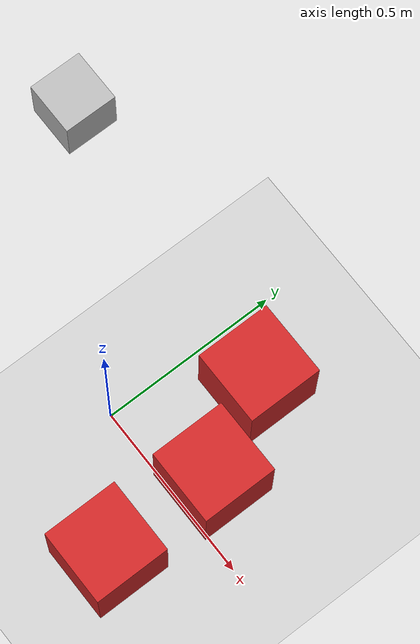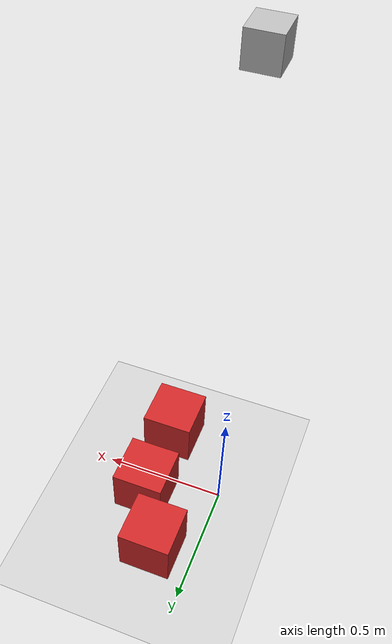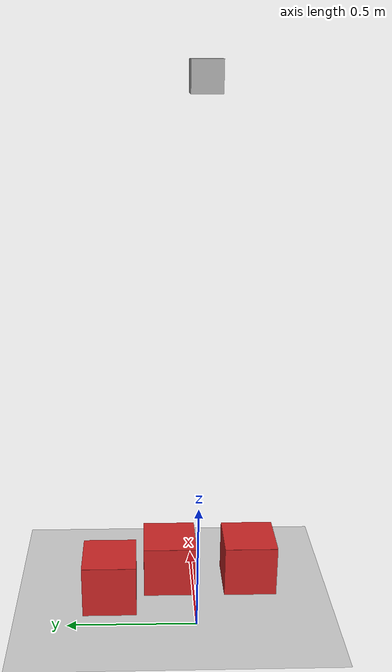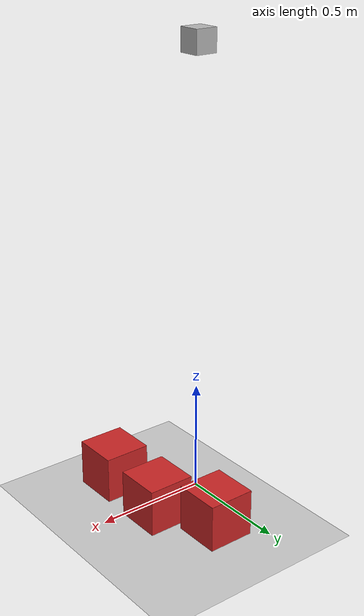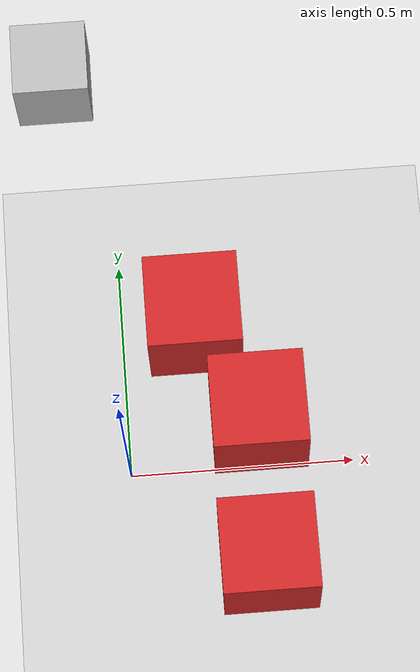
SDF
<sdf version="1.6">
 <world name="default">
  <scene><ambient>0.4 0.4 0.4 1</ambient><background>0.7 0.7 0.7 1</background><shadows>1</shadows></scene>
  <light name="sun" type="directional">
   <pose>0 0 10 0 -0 0</pose>
   <diffuse>0.8 0.8 0.8 1</diffuse>
   <specular>0.2 0.2 0.2 1</specular>
   <attenuation>
    <range>1000</range>
    <constant>0.9</constant>
    <linear>0.01</linear>
    <quadratic>0.001</quadratic>
   </attenuation>
   <direction>-0.5 0.1 -0.9</direction>
  </light>
  <model name="ground_plane">
   <static>1</static>
   <link name="link">
    <collision name="collision">
     <geometry><plane><normal>0 0 1</normal><size>100 100</size></plane></geometry>
     <surface>
      <contact><collide_bitmask>65535</collide_bitmask></contact>
      <friction><ode><mu>100</mu><mu2>50</mu2></ode></friction>
     </surface>
    </collision>
    <visual name="visual">
     <cast_shadows>0</cast_shadows>
     <geometry><plane><normal>0 0 1</normal><size>100 100</size></plane></geometry>
     <material>
      <script><uri>file://media/materials/scripts/gazebo.material</uri><name>Gazebo/Grey</name></script>
     </material>
    </visual>
   </link>
  </model>
  <physics name="default_physics" default="0" type="ode">
   <real_time_update_rate>1000</real_time_update_rate>
   <max_step_size>0.001</max_step_size>
   <real_time_factor>1</real_time_factor>
   <ode>
    <solver>
     <type>quick</type>
     <iters>150</iters>
     <precon_iters>0</precon_iters>
     <sor>1.4</sor>
     <use_dynamic_moi_rescaling>1</use_dynamic_moi_rescaling>
    </solver>
    <constraints>
     <cfm>1e-05</cfm>
     <erp>0.2</erp>
     <contact_max_correcting_vel>2000</contact_max_correcting_vel>
     <contact_surface_layer>0.01</contact_surface_layer>
    </constraints>
   </ode>
  </physics>
  <gravity>0 0 -9.8</gravity>
  <magnetic_field>6e-06 2.3e-05 -4.2e-05</magnetic_field>
  <atmosphere type="adiabatic"/>
  <audio><device>default</device></audio>
  <spherical_coordinates>
   <surface_model>EARTH_WGS84</surface_model>
   <latitude_deg>0</latitude_deg>
   <longitude_deg>0</longitude_deg>
   <elevation>0</elevation>
   <heading_deg>0</heading_deg>
  </spherical_coordinates>
  <model name="camera">
   <link name="camera::camera::link">
    <inertial>
     <mass>0.1</mass>
     <inertia>
      <ixx>0.000166667</ixx>
      <iyy>0.000166667</iyy>
      <izz>0.000166667</izz>
      <ixy>0</ixy>
      <ixz>0</ixz>
      <iyz>0</iyz>
     </inertia>
    </inertial>
    <sensor name="camera" type="wideanglecamera">
     <camera name="left">
      <horizontal_fov>1.5</horizontal_fov>
      <image><width>1280</width><height>1024</height><format>R8G8B8</format></image>
      <clip><near>0.15</near><far>1500</far></clip>
      <noise><type>gaussian</type><mean>0</mean><stddev>0.0001</stddev></noise>
      <lens>
       <type>custom</type>
       <custom_function><c1>1</c1><c2>1.95</c2><f>6</f><fun>tan</fun></custom_function>
       <scale_to_hfov>1</scale_to_hfov>
       <cutoff_angle>2.84489</cutoff_angle>
       <env_texture_size>512</env_texture_size>
      </lens>
     </camera>
     <plugin name="camera_controller" filename="libgazebo_ros_camera.so">
      <alwaysOn>1</alwaysOn>
      <updateRate>25.0</updateRate>
      <robotNamespace>/</robotNamespace>
      <cameraName>camera</cameraName>
      <imageTopicName>image_raw</imageTopicName>
      <cameraInfoTopicName>camera_info</cameraInfoTopicName>
      <frameName>camera_link</frameName>
      <hackBaseline>0.07</hackBaseline>
      <distortionK1>-0.1420192619463601</distortionK1>
      <distortionK2>0.02261291520537641</distortionK2>
      <distortionK3>-0.0006433816187250705</distortionK3>
      <distortionT1>-0.00006726991959411866</distortionT1>
      <distortionT2>0.0</distortionT2>
     </plugin>
    </sensor>
    <gravity>0</gravity>
    <visual name="visual"><geometry><box><size>0.1 0.1 0.1</size></box></geometry></visual>
    <collision name="collision">
     <geometry><box><size>0.1 0.1 0.1</size></box></geometry>
     <surface>
      <friction>
       <ode><mu>1</mu><mu2>1</mu2><fdir1>0 0 0</fdir1><slip1>0</slip1><slip2>0</slip2></ode>
       <torsional>
        <coefficient>1</coefficient>
        <patch_radius>0</patch_radius>
        <surface_radius>0</surface_radius>
        <use_patch_radius>1</use_patch_radius>
        <ode><slip>0</slip></ode>
       </torsional>
      </friction>
      <bounce><restitution_coefficient>0</restitution_coefficient><threshold>1e+06</threshold></bounce>
      <contact>
       <collide_without_contact>0</collide_without_contact>
       <collide_without_contact_bitmask>1</collide_without_contact_bitmask>
       <collide_bitmask>1</collide_bitmask>
       <ode>
        <soft_cfm>0</soft_cfm>
        <soft_erp>0.2</soft_erp>
        <kp>1e+13</kp>
        <kd>1</kd>
        <max_vel>0.01</max_vel>
        <min_depth>0</min_depth>
       </ode>
       <bullet>
        <split_impulse>1</split_impulse>
        <split_impulse_penetration_threshold>-0.01</split_impulse_penetration_threshold>
        <soft_cfm>0</soft_cfm>
        <soft_erp>0.2</soft_erp>
        <kp>1e+13</kp>
        <kd>1</kd>
       </bullet>
      </contact>
     </surface>
    </collision>
   </link>
   <static>1</static>
   <pose>0 0 2 3e-06 1.57079 1.57079</pose>
  </model>
  <model name="unit_box">
   <link name="unit_box::unit_box::link">
    <inertial>
     <mass>1</mass>
     <inertia>
      <ixx>0.166667</ixx>
      <ixy>0</ixy>
      <ixz>0</ixz>
      <iyy>0.166667</iyy>
      <iyz>0</iyz>
      <izz>0.166667</izz>
     </inertia>
    </inertial>
    <visual name="ModelPreview_1::unit_box::unit_box::link::visual_1">
     <geometry><box><size>0.21 0.21 1e-05</size></box></geometry>
     <material>
      <script><name>Gazebo/Red</name><uri>file://media/materials/scripts/gazebo.material</uri></script>
      <shader type="vertex"><normal_map>__default__</normal_map></shader>
      <ambient>1 0 0 1</ambient>
      <diffuse>1 0 0 1</diffuse>
      <specular>1 0 0 1</specular>
      <emissive>1 0 0 1</emissive>
     </material>
     <pose>0 0 0.1055 0 -0 0</pose>
    </visual>
    <visual name="visual">
     <geometry><box><size>0.21 0.21 0.21</size></box></geometry>
     <material>
      <script><name>Gazebo/Red</name><uri>file://media/materials/scripts/gazebo.material</uri></script>
      <shader type="vertex"><normal_map>__default__</normal_map></shader>
      <ambient>0.561 0.349 0.008 1</ambient>
      <diffuse>0.561 0.349 0.008 1</diffuse>
      <specular>0.561 0.349 0.008 1</specular>
      <emissive>0.561 0.349 0.008 1</emissive>
     </material>
    </visual>
    <collision name="collision">
     <geometry><box><size>0.21 0.21 0.21</size></box></geometry>
     <surface>
      <friction>
       <ode><mu>1</mu><mu2>1</mu2><fdir1>0 0 0</fdir1><slip1>0</slip1><slip2>0</slip2></ode>
       <torsional>
        <coefficient>1</coefficient>
        <patch_radius>0</patch_radius>
        <surface_radius>0</surface_radius>
        <use_patch_radius>1</use_patch_radius>
        <ode><slip>0</slip></ode>
       </torsional>
      </friction>
      <bounce><restitution_coefficient>0</restitution_coefficient><threshold>1e+06</threshold></bounce>
      <contact>
       <collide_without_contact>0</collide_without_contact>
       <collide_without_contact_bitmask>1</collide_without_contact_bitmask>
       <collide_bitmask>1</collide_bitmask>
       <ode>
        <soft_cfm>0</soft_cfm>
        <soft_erp>0.2</soft_erp>
        <kp>1e+13</kp>
        <kd>1</kd>
        <max_vel>0.01</max_vel>
        <min_depth>0</min_depth>
       </ode>
       <bullet>
        <split_impulse>1</split_impulse>
        <split_impulse_penetration_threshold>-0.01</split_impulse_penetration_threshold>
        <soft_cfm>0</soft_cfm>
        <soft_erp>0.2</soft_erp>
        <kp>1e+13</kp>
        <kd>1</kd>
       </bullet>
      </contact>
     </surface>
    </collision>
   </link>
   <static>0</static>
   <pose>0.289858 -0.22661 0.105 -3e-06 0 0</pose>
  </model>
  <model name="unit_box_0">
   <link name="unit_box::unit_box::link">
    <inertial>
     <mass>1</mass>
     <inertia>
      <ixx>0.166667</ixx>
      <ixy>0</ixy>
      <ixz>0</ixz>
      <iyy>0.166667</iyy>
      <iyz>0</iyz>
      <izz>0.166667</izz>
     </inertia>
    </inertial>
    <visual name="ModelPreview_1::unit_box::unit_box::link::visual_1">
     <geometry><box><size>0.21 0.21 1e-05</size></box></geometry>
     <material>
      <script><name>Gazebo/Red</name><uri>file://media/materials/scripts/gazebo.material</uri></script>
      <shader type="vertex"><normal_map>__default__</normal_map></shader>
      <ambient>1 0 0 1</ambient>
      <diffuse>1 0 0 1</diffuse>
      <specular>1 0 0 1</specular>
      <emissive>1 0 0 1</emissive>
     </material>
     <pose>0 0 0.1055 0 -0 0</pose>
    </visual>
    <visual name="visual">
     <geometry><box><size>0.21 0.21 0.21</size></box></geometry>
     <material>
      <script><name>Gazebo/Red</name><uri>file://media/materials/scripts/gazebo.material</uri></script>
      <shader type="vertex"><normal_map>__default__</normal_map></shader>
      <ambient>0.561 0.349 0.008 1</ambient>
      <diffuse>0.561 0.349 0.008 1</diffuse>
      <specular>0.561 0.349 0.008 1</specular>
      <emissive>0.561 0.349 0.008 1</emissive>
     </material>
    </visual>
    <collision name="collision">
     <geometry><box><size>0.21 0.21 0.21</size></box></geometry>
     <surface>
      <friction>
       <ode><mu>1</mu><mu2>1</mu2><fdir1>0 0 0</fdir1><slip1>0</slip1><slip2>0</slip2></ode>
       <torsional>
        <coefficient>1</coefficient>
        <patch_radius>0</patch_radius>
        <surface_radius>0</surface_radius>
        <use_patch_radius>1</use_patch_radius>
        <ode><slip>0</slip></ode>
       </torsional>
      </friction>
      <bounce><restitution_coefficient>0</restitution_coefficient><threshold>1e+06</threshold></bounce>
      <contact>
       <collide_without_contact>0</collide_without_contact>
       <collide_without_contact_bitmask>1</collide_without_contact_bitmask>
       <collide_bitmask>1</collide_bitmask>
       <ode>
        <soft_cfm>0</soft_cfm>
        <soft_erp>0.2</soft_erp>
        <kp>1e+13</kp>
        <kd>1</kd>
        <max_vel>0.01</max_vel>
        <min_depth>0</min_depth>
       </ode>
       <bullet>
        <split_impulse>1</split_impulse>
        <split_impulse_penetration_threshold>-0.01</split_impulse_penetration_threshold>
        <soft_cfm>0</soft_cfm>
        <soft_erp>0.2</soft_erp>
        <kp>1e+13</kp>
        <kd>1</kd>
       </bullet>
      </contact>
     </surface>
    </collision>
   </link>
   <static>0</static>
   <pose>0.164534 0.337871 0.105 0 3e-06 0</pose>
  </model>
  <model name="unit_box_1">
   <link name="unit_box::unit_box::link">
    <inertial>
     <mass>1</mass>
     <inertia>
      <ixx>0.166667</ixx>
      <ixy>0</ixy>
      <ixz>0</ixz>
      <iyy>0.166667</iyy>
      <iyz>0</iyz>
      <izz>0.166667</izz>
     </inertia>
    </inertial>
    <visual name="ModelPreview_1::unit_box::unit_box::link::visual_1">
     <geometry><box><size>0.21 0.21 1e-05</size></box></geometry>
     <material>
      <script><name>Gazebo/Red</name><uri>file://media/materials/scripts/gazebo.material</uri></script>
      <shader type="vertex"><normal_map>__default__</normal_map></shader>
      <ambient>1 0 0 1</ambient>
      <diffuse>1 0 0 1</diffuse>
      <specular>1 0 0 1</specular>
      <emissive>1 0 0 1</emissive>
     </material>
     <pose>0 0 0.1055 0 -0 0</pose>
    </visual>
    <visual name="visual">
     <geometry><box><size>0.21 0.21 0.21</size></box></geometry>
     <material>
      <script><name>Gazebo/Red</name><uri>file://media/materials/scripts/gazebo.material</uri></script>
      <shader type="vertex"><normal_map>__default__</normal_map></shader>
      <ambient>0.561 0.349 0.008 1</ambient>
      <diffuse>0.561 0.349 0.008 1</diffuse>
      <specular>0.561 0.349 0.008 1</specular>
      <emissive>0.561 0.349 0.008 1</emissive>
     </material>
    </visual>
    <collision name="collision">
     <geometry><box><size>0.21 0.21 0.21</size></box></geometry>
     <surface>
      <friction>
       <ode><mu>1</mu><mu2>1</mu2><fdir1>0 0 0</fdir1><slip1>0</slip1><slip2>0</slip2></ode>
       <torsional>
        <coefficient>1</coefficient>
        <patch_radius>0</patch_radius>
        <surface_radius>0</surface_radius>
        <use_patch_radius>1</use_patch_radius>
        <ode><slip>0</slip></ode>
       </torsional>
      </friction>
      <bounce><restitution_coefficient>0</restitution_coefficient><threshold>1e+06</threshold></bounce>
      <contact>
       <collide_without_contact>0</collide_without_contact>
       <collide_without_contact_bitmask>1</collide_without_contact_bitmask>
       <collide_bitmask>1</collide_bitmask>
       <ode>
        <soft_cfm>0</soft_cfm>
        <soft_erp>0.2</soft_erp>
        <kp>1e+13</kp>
        <kd>1</kd>
        <max_vel>0.01</max_vel>
        <min_depth>0</min_depth>
       </ode>
       <bullet>
        <split_impulse>1</split_impulse>
        <split_impulse_penetration_threshold>-0.01</split_impulse_penetration_threshold>
        <soft_cfm>0</soft_cfm>
        <soft_erp>0.2</soft_erp>
        <kp>1e+13</kp>
        <kd>1</kd>
       </bullet>
      </contact>
     </surface>
    </collision>
   </link>
   <static>0</static>
   <pose>0.292557 0.097407 0.105001 0 -7e-06 0</pose>
  </model>
 </world>
</sdf>
